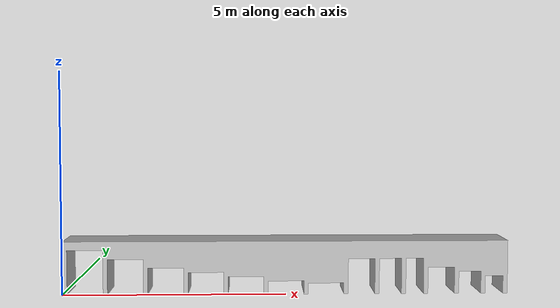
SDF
<?xml version="1.0" ?>
<sdf version="1.5">
  <model name="Bridge_1">
    <pose>0 0 0 0 0 0</pose>
    <static>true</static>
    <link name="body">
      <visual name="visual">
        <geometry>
          <mesh><uri>model://Bridge_1/media/Bridge_1.dae</uri></mesh>
        </geometry>
      </visual>
      <collision name="collision">
        <geometry>
          <mesh><uri>model://Bridge_1/media/Bridge_1.dae</uri></mesh>
        </geometry>
      </collision>
    </link>
  </model>
</sdf>
